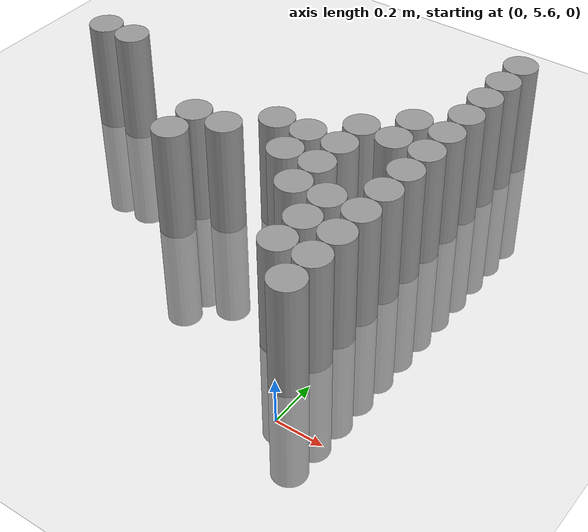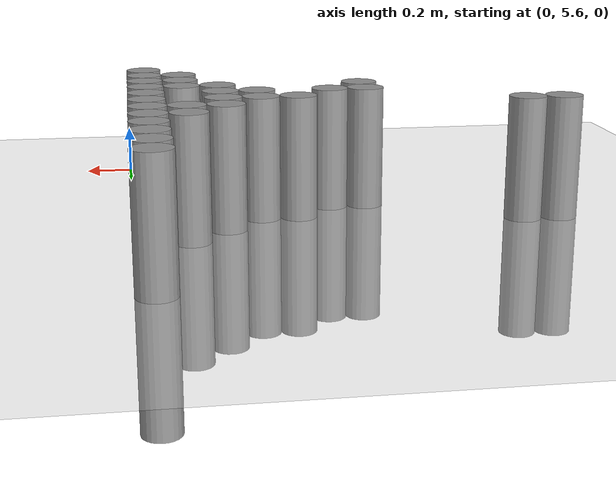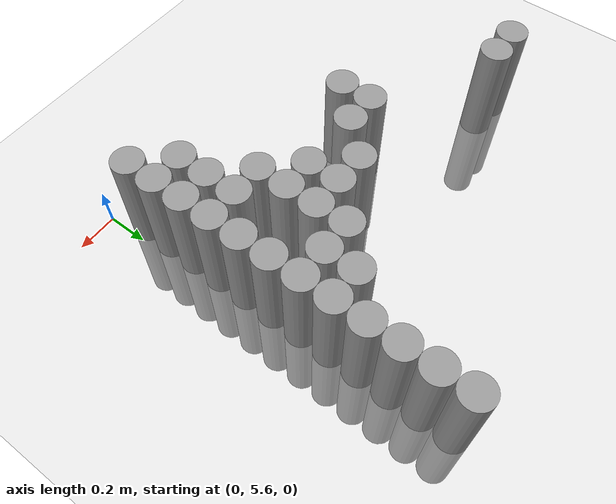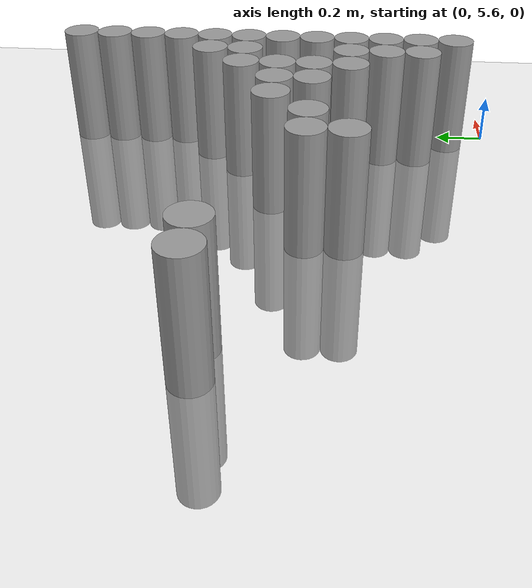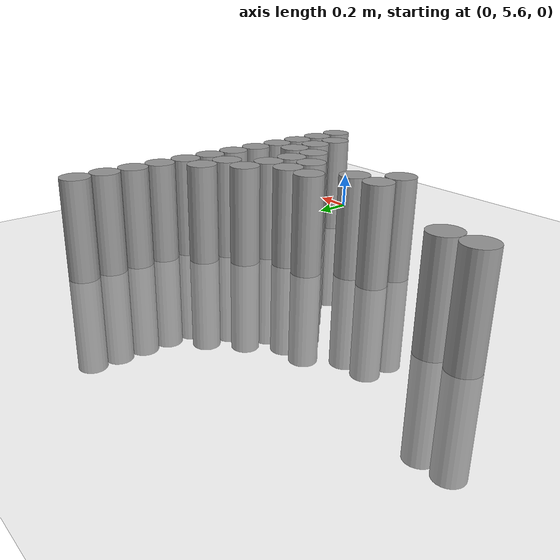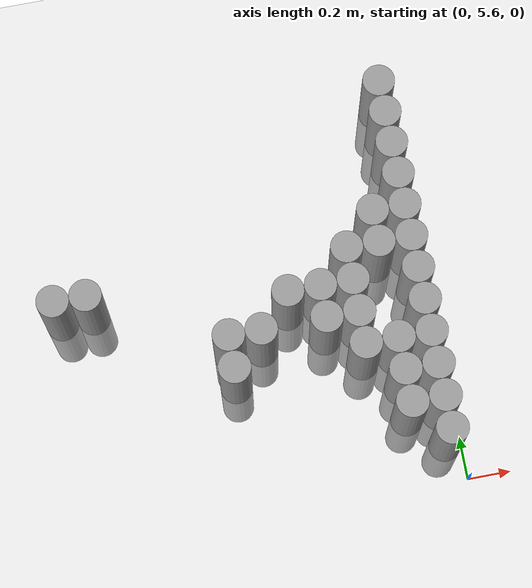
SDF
<sdf version="1.6">
 <world name="default">
  <model name="ground_plane">
   <static>1</static>
   <static>1</static>
   <link name="link">
    <collision name="collision">
     <geometry><plane><normal>0 0 1</normal><size>100 100</size></plane></geometry>
     <surface><friction><ode><mu>100</mu><mu2>50</mu2></ode></friction></surface>
    </collision>
    <visual name="visual">
     <cast_shadows>0</cast_shadows>
     <geometry><plane><normal>0 0 1</normal><size>100 100</size></plane></geometry>
     <material>
      <script><uri>file://media/materials/scripts/gazebo.material</uri><name>Gazebo/Grey</name></script>
     </material>
    </visual>
   </link>
  </model>
  <model name="unit_cylinder_168">
   <static>1</static>
   <pose>-1.725000 6.675000 0.000000 0.000000 0.000000 0.000000</pose>
   <link name="link">
    <inertial>
     <mass>1</mass>
     <inertia><ixx>0.145833</ixx><ixy>0</ixy><ixz>0</ixz><iyy>0.145833</iyy><iyz>0</iyz><izz>0.125</izz></inertia>
    </inertial>
    <collision name="collision">
     <geometry><cylinder><radius>0.075000</radius><length>1</length></cylinder></geometry>
    </collision>
    <visual name="visual">
     <geometry><cylinder><radius>0.075000</radius><length>1</length></cylinder></geometry>
     <material>
      <script><name>Gazebo/Grey</name><uri>file://media/materials/scripts/gazebo.material</uri></script>
     </material>
    </visual>
   </link>
  </model>
  <model name="unit_cylinder_170">
   <static>1</static>
   <pose>-1.575000 6.675000 0.000000 0.000000 0.000000 0.000000</pose>
   <link name="link">
    <inertial>
     <mass>1</mass>
     <inertia><ixx>0.145833</ixx><ixy>0</ixy><ixz>0</ixz><iyy>0.145833</iyy><iyz>0</iyz><izz>0.125</izz></inertia>
    </inertial>
    <collision name="collision">
     <geometry><cylinder><radius>0.075000</radius><length>1</length></cylinder></geometry>
    </collision>
    <visual name="visual">
     <geometry><cylinder><radius>0.075000</radius><length>1</length></cylinder></geometry>
     <material>
      <script><name>Gazebo/Grey</name><uri>file://media/materials/scripts/gazebo.material</uri></script>
     </material>
    </visual>
   </link>
  </model>
  <model name="unit_cylinder_173">
   <static>1</static>
   <pose>-0.975000 6.225000 0.000000 0.000000 0.000000 0.000000</pose>
   <link name="link">
    <inertial>
     <mass>1</mass>
     <inertia><ixx>0.145833</ixx><ixy>0</ixy><ixz>0</ixz><iyy>0.145833</iyy><iyz>0</iyz><izz>0.125</izz></inertia>
    </inertial>
    <collision name="collision">
     <geometry><cylinder><radius>0.075000</radius><length>1</length></cylinder></geometry>
    </collision>
    <visual name="visual">
     <geometry><cylinder><radius>0.075000</radius><length>1</length></cylinder></geometry>
     <material>
      <script><name>Gazebo/Grey</name><uri>file://media/materials/scripts/gazebo.material</uri></script>
     </material>
    </visual>
   </link>
  </model>
  <model name="unit_cylinder_174">
   <static>1</static>
   <pose>-0.975000 6.375000 0.000000 0.000000 0.000000 0.000000</pose>
   <link name="link">
    <inertial>
     <mass>1</mass>
     <inertia><ixx>0.145833</ixx><ixy>0</ixy><ixz>0</ixz><iyy>0.145833</iyy><iyz>0</iyz><izz>0.125</izz></inertia>
    </inertial>
    <collision name="collision">
     <geometry><cylinder><radius>0.075000</radius><length>1</length></cylinder></geometry>
    </collision>
    <visual name="visual">
     <geometry><cylinder><radius>0.075000</radius><length>1</length></cylinder></geometry>
     <material>
      <script><name>Gazebo/Grey</name><uri>file://media/materials/scripts/gazebo.material</uri></script>
     </material>
    </visual>
   </link>
  </model>
  <model name="unit_cylinder_178">
   <static>1</static>
   <pose>-0.825000 6.375000 0.000000 0.000000 0.000000 0.000000</pose>
   <link name="link">
    <inertial>
     <mass>1</mass>
     <inertia><ixx>0.145833</ixx><ixy>0</ixy><ixz>0</ixz><iyy>0.145833</iyy><iyz>0</iyz><izz>0.125</izz></inertia>
    </inertial>
    <collision name="collision">
     <geometry><cylinder><radius>0.075000</radius><length>1</length></cylinder></geometry>
    </collision>
    <visual name="visual">
     <geometry><cylinder><radius>0.075000</radius><length>1</length></cylinder></geometry>
     <material>
      <script><name>Gazebo/Grey</name><uri>file://media/materials/scripts/gazebo.material</uri></script>
     </material>
    </visual>
   </link>
  </model>
  <model name="unit_cylinder_180">
   <static>1</static>
   <pose>-0.675000 6.525000 0.000000 0.000000 0.000000 0.000000</pose>
   <link name="link">
    <inertial>
     <mass>1</mass>
     <inertia><ixx>0.145833</ixx><ixy>0</ixy><ixz>0</ixz><iyy>0.145833</iyy><iyz>0</iyz><izz>0.125</izz></inertia>
    </inertial>
    <collision name="collision">
     <geometry><cylinder><radius>0.075000</radius><length>1</length></cylinder></geometry>
    </collision>
    <visual name="visual">
     <geometry><cylinder><radius>0.075000</radius><length>1</length></cylinder></geometry>
     <material>
      <script><name>Gazebo/Grey</name><uri>file://media/materials/scripts/gazebo.material</uri></script>
     </material>
    </visual>
   </link>
  </model>
  <model name="unit_cylinder_181">
   <static>1</static>
   <pose>-0.525000 6.375000 0.000000 0.000000 0.000000 0.000000</pose>
   <link name="link">
    <inertial>
     <mass>1</mass>
     <inertia><ixx>0.145833</ixx><ixy>0</ixy><ixz>0</ixz><iyy>0.145833</iyy><iyz>0</iyz><izz>0.125</izz></inertia>
    </inertial>
    <collision name="collision">
     <geometry><cylinder><radius>0.075000</radius><length>1</length></cylinder></geometry>
    </collision>
    <visual name="visual">
     <geometry><cylinder><radius>0.075000</radius><length>1</length></cylinder></geometry>
     <material>
      <script><name>Gazebo/Grey</name><uri>file://media/materials/scripts/gazebo.material</uri></script>
     </material>
    </visual>
   </link>
  </model>
  <model name="unit_cylinder_182">
   <static>1</static>
   <pose>-0.525000 6.525000 0.000000 0.000000 0.000000 0.000000</pose>
   <link name="link">
    <inertial>
     <mass>1</mass>
     <inertia><ixx>0.145833</ixx><ixy>0</ixy><ixz>0</ixz><iyy>0.145833</iyy><iyz>0</iyz><izz>0.125</izz></inertia>
    </inertial>
    <collision name="collision">
     <geometry><cylinder><radius>0.075000</radius><length>1</length></cylinder></geometry>
    </collision>
    <visual name="visual">
     <geometry><cylinder><radius>0.075000</radius><length>1</length></cylinder></geometry>
     <material>
      <script><name>Gazebo/Grey</name><uri>file://media/materials/scripts/gazebo.material</uri></script>
     </material>
    </visual>
   </link>
  </model>
  <model name="unit_cylinder_183">
   <static>1</static>
   <pose>-0.375000 6.225000 0.000000 0.000000 0.000000 0.000000</pose>
   <link name="link">
    <inertial>
     <mass>1</mass>
     <inertia><ixx>0.145833</ixx><ixy>0</ixy><ixz>0</ixz><iyy>0.145833</iyy><iyz>0</iyz><izz>0.125</izz></inertia>
    </inertial>
    <collision name="collision">
     <geometry><cylinder><radius>0.075000</radius><length>1</length></cylinder></geometry>
    </collision>
    <visual name="visual">
     <geometry><cylinder><radius>0.075000</radius><length>1</length></cylinder></geometry>
     <material>
      <script><name>Gazebo/Grey</name><uri>file://media/materials/scripts/gazebo.material</uri></script>
     </material>
    </visual>
   </link>
  </model>
  <model name="unit_cylinder_184">
   <static>1</static>
   <pose>-0.375000 6.375000 0.000000 0.000000 0.000000 0.000000</pose>
   <link name="link">
    <inertial>
     <mass>1</mass>
     <inertia><ixx>0.145833</ixx><ixy>0</ixy><ixz>0</ixz><iyy>0.145833</iyy><iyz>0</iyz><izz>0.125</izz></inertia>
    </inertial>
    <collision name="collision">
     <geometry><cylinder><radius>0.075000</radius><length>1</length></cylinder></geometry>
    </collision>
    <visual name="visual">
     <geometry><cylinder><radius>0.075000</radius><length>1</length></cylinder></geometry>
     <material>
      <script><name>Gazebo/Grey</name><uri>file://media/materials/scripts/gazebo.material</uri></script>
     </material>
    </visual>
   </link>
  </model>
  <model name="unit_cylinder_185">
   <static>1</static>
   <pose>-0.375000 6.525000 0.000000 0.000000 0.000000 0.000000</pose>
   <link name="link">
    <inertial>
     <mass>1</mass>
     <inertia><ixx>0.145833</ixx><ixy>0</ixy><ixz>0</ixz><iyy>0.145833</iyy><iyz>0</iyz><izz>0.125</izz></inertia>
    </inertial>
    <collision name="collision">
     <geometry><cylinder><radius>0.075000</radius><length>1</length></cylinder></geometry>
    </collision>
    <visual name="visual">
     <geometry><cylinder><radius>0.075000</radius><length>1</length></cylinder></geometry>
     <material>
      <script><name>Gazebo/Grey</name><uri>file://media/materials/scripts/gazebo.material</uri></script>
     </material>
    </visual>
   </link>
  </model>
  <model name="unit_cylinder_186">
   <static>1</static>
   <pose>-0.375000 6.675000 0.000000 0.000000 0.000000 0.000000</pose>
   <link name="link">
    <inertial>
     <mass>1</mass>
     <inertia><ixx>0.145833</ixx><ixy>0</ixy><ixz>0</ixz><iyy>0.145833</iyy><iyz>0</iyz><izz>0.125</izz></inertia>
    </inertial>
    <collision name="collision">
     <geometry><cylinder><radius>0.075000</radius><length>1</length></cylinder></geometry>
    </collision>
    <visual name="visual">
     <geometry><cylinder><radius>0.075000</radius><length>1</length></cylinder></geometry>
     <material>
      <script><name>Gazebo/Grey</name><uri>file://media/materials/scripts/gazebo.material</uri></script>
     </material>
    </visual>
   </link>
  </model>
  <model name="unit_cylinder_189">
   <static>1</static>
   <pose>-0.225000 5.925000 0.000000 0.000000 0.000000 0.000000</pose>
   <link name="link">
    <inertial>
     <mass>1</mass>
     <inertia><ixx>0.145833</ixx><ixy>0</ixy><ixz>0</ixz><iyy>0.145833</iyy><iyz>0</iyz><izz>0.125</izz></inertia>
    </inertial>
    <collision name="collision">
     <geometry><cylinder><radius>0.075000</radius><length>1</length></cylinder></geometry>
    </collision>
    <visual name="visual">
     <geometry><cylinder><radius>0.075000</radius><length>1</length></cylinder></geometry>
     <material>
      <script><name>Gazebo/Grey</name><uri>file://media/materials/scripts/gazebo.material</uri></script>
     </material>
    </visual>
   </link>
  </model>
  <model name="unit_cylinder_190">
   <static>1</static>
   <pose>-0.225000 6.075000 0.000000 0.000000 0.000000 0.000000</pose>
   <link name="link">
    <inertial>
     <mass>1</mass>
     <inertia><ixx>0.145833</ixx><ixy>0</ixy><ixz>0</ixz><iyy>0.145833</iyy><iyz>0</iyz><izz>0.125</izz></inertia>
    </inertial>
    <collision name="collision">
     <geometry><cylinder><radius>0.075000</radius><length>1</length></cylinder></geometry>
    </collision>
    <visual name="visual">
     <geometry><cylinder><radius>0.075000</radius><length>1</length></cylinder></geometry>
     <material>
      <script><name>Gazebo/Grey</name><uri>file://media/materials/scripts/gazebo.material</uri></script>
     </material>
    </visual>
   </link>
  </model>
  <model name="unit_cylinder_191">
   <static>1</static>
   <pose>-0.225000 6.225000 0.000000 0.000000 0.000000 0.000000</pose>
   <link name="link">
    <inertial>
     <mass>1</mass>
     <inertia><ixx>0.145833</ixx><ixy>0</ixy><ixz>0</ixz><iyy>0.145833</iyy><iyz>0</iyz><izz>0.125</izz></inertia>
    </inertial>
    <collision name="collision">
     <geometry><cylinder><radius>0.075000</radius><length>1</length></cylinder></geometry>
    </collision>
    <visual name="visual">
     <geometry><cylinder><radius>0.075000</radius><length>1</length></cylinder></geometry>
     <material>
      <script><name>Gazebo/Grey</name><uri>file://media/materials/scripts/gazebo.material</uri></script>
     </material>
    </visual>
   </link>
  </model>
  <model name="unit_cylinder_192">
   <static>1</static>
   <pose>-0.225000 6.675000 0.000000 0.000000 0.000000 0.000000</pose>
   <link name="link">
    <inertial>
     <mass>1</mass>
     <inertia><ixx>0.145833</ixx><ixy>0</ixy><ixz>0</ixz><iyy>0.145833</iyy><iyz>0</iyz><izz>0.125</izz></inertia>
    </inertial>
    <collision name="collision">
     <geometry><cylinder><radius>0.075000</radius><length>1</length></cylinder></geometry>
    </collision>
    <visual name="visual">
     <geometry><cylinder><radius>0.075000</radius><length>1</length></cylinder></geometry>
     <material>
      <script><name>Gazebo/Grey</name><uri>file://media/materials/scripts/gazebo.material</uri></script>
     </material>
    </visual>
   </link>
  </model>
  <model name="unit_cylinder_193">
   <static>1</static>
   <pose>-0.225000 6.825000 0.000000 0.000000 0.000000 0.000000</pose>
   <link name="link">
    <inertial>
     <mass>1</mass>
     <inertia><ixx>0.145833</ixx><ixy>0</ixy><ixz>0</ixz><iyy>0.145833</iyy><iyz>0</iyz><izz>0.125</izz></inertia>
    </inertial>
    <collision name="collision">
     <geometry><cylinder><radius>0.075000</radius><length>1</length></cylinder></geometry>
    </collision>
    <visual name="visual">
     <geometry><cylinder><radius>0.075000</radius><length>1</length></cylinder></geometry>
     <material>
      <script><name>Gazebo/Grey</name><uri>file://media/materials/scripts/gazebo.material</uri></script>
     </material>
    </visual>
   </link>
  </model>
  <model name="unit_cylinder_206">
   <static>1</static>
   <pose>-0.075000 5.775000 0.000000 0.000000 0.000000 0.000000</pose>
   <link name="link">
    <inertial>
     <mass>1</mass>
     <inertia><ixx>0.145833</ixx><ixy>0</ixy><ixz>0</ixz><iyy>0.145833</iyy><iyz>0</iyz><izz>0.125</izz></inertia>
    </inertial>
    <collision name="collision">
     <geometry><cylinder><radius>0.075000</radius><length>1</length></cylinder></geometry>
    </collision>
    <visual name="visual">
     <geometry><cylinder><radius>0.075000</radius><length>1</length></cylinder></geometry>
     <material>
      <script><name>Gazebo/Grey</name><uri>file://media/materials/scripts/gazebo.material</uri></script>
     </material>
    </visual>
   </link>
  </model>
  <model name="unit_cylinder_207">
   <static>1</static>
   <pose>-0.075000 5.925000 0.000000 0.000000 0.000000 0.000000</pose>
   <link name="link">
    <inertial>
     <mass>1</mass>
     <inertia><ixx>0.145833</ixx><ixy>0</ixy><ixz>0</ixz><iyy>0.145833</iyy><iyz>0</iyz><izz>0.125</izz></inertia>
    </inertial>
    <collision name="collision">
     <geometry><cylinder><radius>0.075000</radius><length>1</length></cylinder></geometry>
    </collision>
    <visual name="visual">
     <geometry><cylinder><radius>0.075000</radius><length>1</length></cylinder></geometry>
     <material>
      <script><name>Gazebo/Grey</name><uri>file://media/materials/scripts/gazebo.material</uri></script>
     </material>
    </visual>
   </link>
  </model>
  <model name="unit_cylinder_208">
   <static>1</static>
   <pose>-0.075000 6.075000 0.000000 0.000000 0.000000 0.000000</pose>
   <link name="link">
    <inertial>
     <mass>1</mass>
     <inertia><ixx>0.145833</ixx><ixy>0</ixy><ixz>0</ixz><iyy>0.145833</iyy><iyz>0</iyz><izz>0.125</izz></inertia>
    </inertial>
    <collision name="collision">
     <geometry><cylinder><radius>0.075000</radius><length>1</length></cylinder></geometry>
    </collision>
    <visual name="visual">
     <geometry><cylinder><radius>0.075000</radius><length>1</length></cylinder></geometry>
     <material>
      <script><name>Gazebo/Grey</name><uri>file://media/materials/scripts/gazebo.material</uri></script>
     </material>
    </visual>
   </link>
  </model>
  <model name="unit_cylinder_209">
   <static>1</static>
   <pose>-0.075000 6.225000 0.000000 0.000000 0.000000 0.000000</pose>
   <link name="link">
    <inertial>
     <mass>1</mass>
     <inertia><ixx>0.145833</ixx><ixy>0</ixy><ixz>0</ixz><iyy>0.145833</iyy><iyz>0</iyz><izz>0.125</izz></inertia>
    </inertial>
    <collision name="collision">
     <geometry><cylinder><radius>0.075000</radius><length>1</length></cylinder></geometry>
    </collision>
    <visual name="visual">
     <geometry><cylinder><radius>0.075000</radius><length>1</length></cylinder></geometry>
     <material>
      <script><name>Gazebo/Grey</name><uri>file://media/materials/scripts/gazebo.material</uri></script>
     </material>
    </visual>
   </link>
  </model>
  <model name="unit_cylinder_210">
   <static>1</static>
   <pose>-0.075000 6.375000 0.000000 0.000000 0.000000 0.000000</pose>
   <link name="link">
    <inertial>
     <mass>1</mass>
     <inertia><ixx>0.145833</ixx><ixy>0</ixy><ixz>0</ixz><iyy>0.145833</iyy><iyz>0</iyz><izz>0.125</izz></inertia>
    </inertial>
    <collision name="collision">
     <geometry><cylinder><radius>0.075000</radius><length>1</length></cylinder></geometry>
    </collision>
    <visual name="visual">
     <geometry><cylinder><radius>0.075000</radius><length>1</length></cylinder></geometry>
     <material>
      <script><name>Gazebo/Grey</name><uri>file://media/materials/scripts/gazebo.material</uri></script>
     </material>
    </visual>
   </link>
  </model>
  <model name="unit_cylinder_211">
   <static>1</static>
   <pose>-0.075000 6.525000 0.000000 0.000000 0.000000 0.000000</pose>
   <link name="link">
    <inertial>
     <mass>1</mass>
     <inertia><ixx>0.145833</ixx><ixy>0</ixy><ixz>0</ixz><iyy>0.145833</iyy><iyz>0</iyz><izz>0.125</izz></inertia>
    </inertial>
    <collision name="collision">
     <geometry><cylinder><radius>0.075000</radius><length>1</length></cylinder></geometry>
    </collision>
    <visual name="visual">
     <geometry><cylinder><radius>0.075000</radius><length>1</length></cylinder></geometry>
     <material>
      <script><name>Gazebo/Grey</name><uri>file://media/materials/scripts/gazebo.material</uri></script>
     </material>
    </visual>
   </link>
  </model>
  <model name="unit_cylinder_212">
   <static>1</static>
   <pose>-0.075000 6.675000 0.000000 0.000000 0.000000 0.000000</pose>
   <link name="link">
    <inertial>
     <mass>1</mass>
     <inertia><ixx>0.145833</ixx><ixy>0</ixy><ixz>0</ixz><iyy>0.145833</iyy><iyz>0</iyz><izz>0.125</izz></inertia>
    </inertial>
    <collision name="collision">
     <geometry><cylinder><radius>0.075000</radius><length>1</length></cylinder></geometry>
    </collision>
    <visual name="visual">
     <geometry><cylinder><radius>0.075000</radius><length>1</length></cylinder></geometry>
     <material>
      <script><name>Gazebo/Grey</name><uri>file://media/materials/scripts/gazebo.material</uri></script>
     </material>
    </visual>
   </link>
  </model>
  <model name="unit_cylinder_213">
   <static>1</static>
   <pose>-0.075000 6.825000 0.000000 0.000000 0.000000 0.000000</pose>
   <link name="link">
    <inertial>
     <mass>1</mass>
     <inertia><ixx>0.145833</ixx><ixy>0</ixy><ixz>0</ixz><iyy>0.145833</iyy><iyz>0</iyz><izz>0.125</izz></inertia>
    </inertial>
    <collision name="collision">
     <geometry><cylinder><radius>0.075000</radius><length>1</length></cylinder></geometry>
    </collision>
    <visual name="visual">
     <geometry><cylinder><radius>0.075000</radius><length>1</length></cylinder></geometry>
     <material>
      <script><name>Gazebo/Grey</name><uri>file://media/materials/scripts/gazebo.material</uri></script>
     </material>
    </visual>
   </link>
  </model>
  <model name="unit_cylinder_214">
   <static>1</static>
   <pose>-0.075000 6.975000 0.000000 0.000000 0.000000 0.000000</pose>
   <link name="link">
    <inertial>
     <mass>1</mass>
     <inertia><ixx>0.145833</ixx><ixy>0</ixy><ixz>0</ixz><iyy>0.145833</iyy><iyz>0</iyz><izz>0.125</izz></inertia>
    </inertial>
    <collision name="collision">
     <geometry><cylinder><radius>0.075000</radius><length>1</length></cylinder></geometry>
    </collision>
    <visual name="visual">
     <geometry><cylinder><radius>0.075000</radius><length>1</length></cylinder></geometry>
     <material>
      <script><name>Gazebo/Grey</name><uri>file://media/materials/scripts/gazebo.material</uri></script>
     </material>
    </visual>
   </link>
  </model>
  <model name="unit_cylinder_215">
   <static>1</static>
   <pose>-0.075000 7.125000 0.000000 0.000000 0.000000 0.000000</pose>
   <link name="link">
    <inertial>
     <mass>1</mass>
     <inertia><ixx>0.145833</ixx><ixy>0</ixy><ixz>0</ixz><iyy>0.145833</iyy><iyz>0</iyz><izz>0.125</izz></inertia>
    </inertial>
    <collision name="collision">
     <geometry><cylinder><radius>0.075000</radius><length>1</length></cylinder></geometry>
    </collision>
    <visual name="visual">
     <geometry><cylinder><radius>0.075000</radius><length>1</length></cylinder></geometry>
     <material>
      <script><name>Gazebo/Grey</name><uri>file://media/materials/scripts/gazebo.material</uri></script>
     </material>
    </visual>
   </link>
  </model>
  <model name="unit_cylinder_216">
   <static>1</static>
   <pose>-0.075000 7.275000 0.000000 0.000000 0.000000 0.000000</pose>
   <link name="link">
    <inertial>
     <mass>1</mass>
     <inertia><ixx>0.145833</ixx><ixy>0</ixy><ixz>0</ixz><iyy>0.145833</iyy><iyz>0</iyz><izz>0.125</izz></inertia>
    </inertial>
    <collision name="collision">
     <geometry><cylinder><radius>0.075000</radius><length>1</length></cylinder></geometry>
    </collision>
    <visual name="visual">
     <geometry><cylinder><radius>0.075000</radius><length>1</length></cylinder></geometry>
     <material>
      <script><name>Gazebo/Grey</name><uri>file://media/materials/scripts/gazebo.material</uri></script>
     </material>
    </visual>
   </link>
  </model>
  <model name="unit_cylinder_217">
   <static>1</static>
   <pose>-0.075000 7.425000 0.000000 0.000000 0.000000 0.000000</pose>
   <link name="link">
    <inertial>
     <mass>1</mass>
     <inertia><ixx>0.145833</ixx><ixy>0</ixy><ixz>0</ixz><iyy>0.145833</iyy><iyz>0</iyz><izz>0.125</izz></inertia>
    </inertial>
    <collision name="collision">
     <geometry><cylinder><radius>0.075000</radius><length>1</length></cylinder></geometry>
    </collision>
    <visual name="visual">
     <geometry><cylinder><radius>0.075000</radius><length>1</length></cylinder></geometry>
     <material>
      <script><name>Gazebo/Grey</name><uri>file://media/materials/scripts/gazebo.material</uri></script>
     </material>
    </visual>
   </link>
  </model>
 </world>
</sdf>
